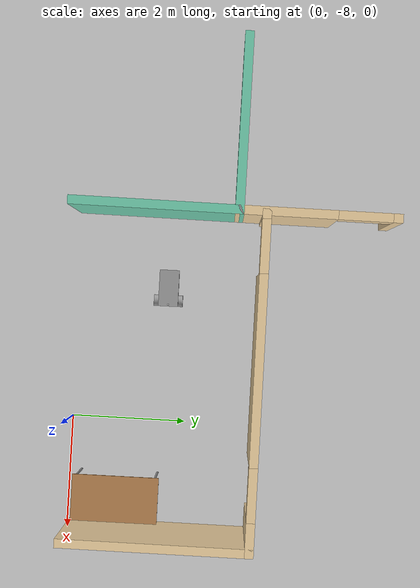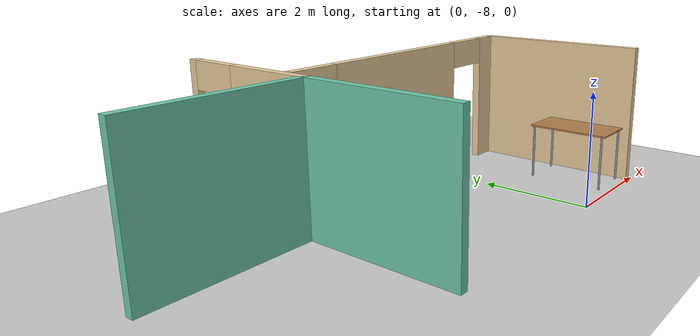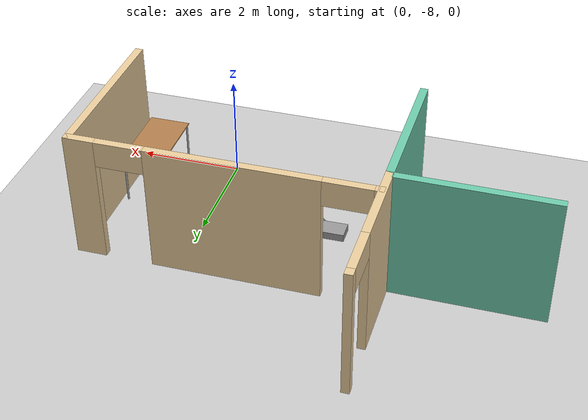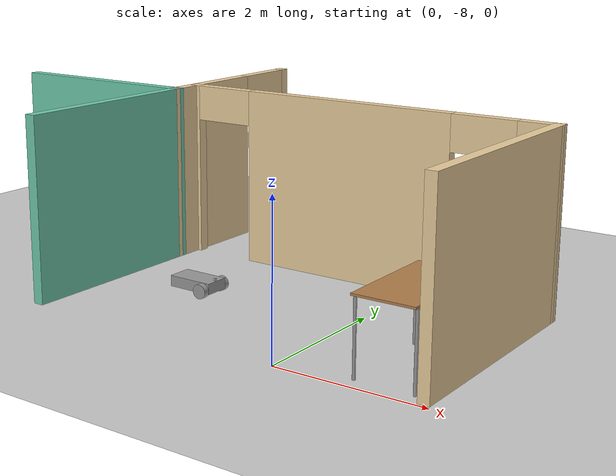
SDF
<sdf version="1.6">
 <world name="default">
  <model name="ground_plane">
   <static>1</static>
   <link name="link">
    <collision name="collision">
     <geometry><plane><normal>0 0 1</normal><size>100 100</size></plane></geometry>
     <surface><friction><ode><mu>100</mu><mu2>50</mu2></ode></friction></surface>
    </collision>
    <visual name="visual">
     <cast_shadows>0</cast_shadows>
     <geometry><plane><normal>0 0 1</normal><size>100 100</size></plane></geometry>
     <material>
      <script><uri>file://media/materials/scripts/gazebo.material</uri><name>Gazebo/Grey</name></script>
     </material>
    </visual>
   </link>
  </model>
  <model name="Building">
   <link name="Wall_269">
    <pose>-5.10842 -4.98169 0 0 -0 0</pose>
    <visual name="Wall_269_Visual">
     <pose>0 0 1.25 0 -0 0</pose>
     <geometry><box><size>0.15 0.15 2.5</size></box></geometry>
     <material>
      <script><uri>file://media/materials/scripts/gazebo.material</uri><name>Gazebo/Grey</name></script>
      <ambient>1 1 1 1</ambient>
      <shader type="pixel"/>
      <diffuse>0.7 0.7 0.7 1</diffuse>
      <specular>0.01 0.01 0.01 1</specular>
      <emissive>0 0 0 1</emissive>
     </material>
     <meta><layer>0</layer></meta>
    </visual>
    <collision name="Wall_269_Collision">
     <pose>0 0 1.25 0 -0 0</pose>
     <geometry><box><size>0.15 0.15 2.5</size></box></geometry>
     <surface>
      <friction>
       <ode><mu>1</mu><mu2>1</mu2><fdir1>0 0 0</fdir1><slip1>0</slip1><slip2>0</slip2></ode>
       <torsional>
        <coefficient>1</coefficient>
        <patch_radius>0</patch_radius>
        <surface_radius>0</surface_radius>
        <use_patch_radius>1</use_patch_radius>
        <ode><slip>0</slip></ode>
       </torsional>
      </friction>
      <bounce><restitution_coefficient>0</restitution_coefficient><threshold>1e+06</threshold></bounce>
      <contact>
       <collide_without_contact>0</collide_without_contact>
       <collide_without_contact_bitmask>1</collide_without_contact_bitmask>
       <collide_bitmask>1</collide_bitmask>
       <ode>
        <soft_cfm>0</soft_cfm>
        <soft_erp>0.2</soft_erp>
        <kp>1e+13</kp>
        <kd>1</kd>
        <max_vel>0.01</max_vel>
        <min_depth>0</min_depth>
       </ode>
       <bullet>
        <split_impulse>1</split_impulse>
        <split_impulse_penetration_threshold>-0.01</split_impulse_penetration_threshold>
        <soft_cfm>0</soft_cfm>
        <soft_erp>0.2</soft_erp>
        <kp>1e+13</kp>
        <kd>1</kd>
       </bullet>
      </contact>
     </surface>
    </collision>
   </link>
   <link name="Wall_270">
    <pose>-5.10842 -3.68169 0 0 -0 1.5708</pose>
    <visual name="Wall_270_Visual_0">
     <pose>-0.529099 0 1.25 0 -0 0</pose>
     <geometry><box><size>1.6918 0.15 2.5</size></box></geometry>
     <material>
      <script><uri>file://media/materials/scripts/gazebo.material</uri><name>Gazebo/Grey</name></script>
      <ambient>0.921569 0.807843 0.615686 1</ambient>
      <shader type="pixel"/>
      <diffuse>0.7 0.7 0.7 1</diffuse>
      <specular>0.01 0.01 0.01 1</specular>
      <emissive>0 0 0 1</emissive>
     </material>
     <meta><layer>0</layer></meta>
    </visual>
    <visual name="Wall_270_Visual_1">
     <pose>1.2959 0 1.25 0 -0 0</pose>
     <geometry><box><size>0.158198 0.15 2.5</size></box></geometry>
     <material>
      <script><uri>file://media/materials/scripts/gazebo.material</uri><name>Gazebo/Grey</name></script>
      <ambient>0.921569 0.807843 0.615686 1</ambient>
      <shader type="pixel"/>
      <diffuse>0.7 0.7 0.7 1</diffuse>
      <specular>0.01 0.01 0.01 1</specular>
      <emissive>0 0 0 1</emissive>
     </material>
     <meta><layer>0</layer></meta>
    </visual>
    <visual name="Wall_270_Visual_2">
     <pose>0.766802 0 2.25 0 -0 0</pose>
     <geometry><box><size>0.9 0.15 0.5</size></box></geometry>
     <material>
      <script><uri>file://media/materials/scripts/gazebo.material</uri><name>Gazebo/Grey</name></script>
      <ambient>0.921569 0.807843 0.615686 1</ambient>
      <shader type="pixel"/>
      <diffuse>0.7 0.7 0.7 1</diffuse>
      <specular>0.01 0.01 0.01 1</specular>
      <emissive>0 0 0 1</emissive>
     </material>
     <meta><layer>0</layer></meta>
    </visual>
    <collision name="Wall_270_Collision_0">
     <pose>-0.529099 0 1.25 0 -0 0</pose>
     <geometry><box><size>1.6918 0.15 2.5</size></box></geometry>
     <surface>
      <friction>
       <ode><mu>1</mu><mu2>1</mu2><fdir1>0 0 0</fdir1><slip1>0</slip1><slip2>0</slip2></ode>
       <torsional>
        <coefficient>1</coefficient>
        <patch_radius>0</patch_radius>
        <surface_radius>0</surface_radius>
        <use_patch_radius>1</use_patch_radius>
        <ode><slip>0</slip></ode>
       </torsional>
      </friction>
      <bounce><restitution_coefficient>0</restitution_coefficient><threshold>1e+06</threshold></bounce>
      <contact>
       <collide_without_contact>0</collide_without_contact>
       <collide_without_contact_bitmask>1</collide_without_contact_bitmask>
       <collide_bitmask>1</collide_bitmask>
       <ode>
        <soft_cfm>0</soft_cfm>
        <soft_erp>0.2</soft_erp>
        <kp>1e+13</kp>
        <kd>1</kd>
        <max_vel>0.01</max_vel>
        <min_depth>0</min_depth>
       </ode>
       <bullet>
        <split_impulse>1</split_impulse>
        <split_impulse_penetration_threshold>-0.01</split_impulse_penetration_threshold>
        <soft_cfm>0</soft_cfm>
        <soft_erp>0.2</soft_erp>
        <kp>1e+13</kp>
        <kd>1</kd>
       </bullet>
      </contact>
     </surface>
    </collision>
    <collision name="Wall_270_Collision_1">
     <pose>1.2959 0 1.25 0 -0 0</pose>
     <geometry><box><size>0.158198 0.15 2.5</size></box></geometry>
     <surface>
      <friction>
       <ode><mu>1</mu><mu2>1</mu2><fdir1>0 0 0</fdir1><slip1>0</slip1><slip2>0</slip2></ode>
       <torsional>
        <coefficient>1</coefficient>
        <patch_radius>0</patch_radius>
        <surface_radius>0</surface_radius>
        <use_patch_radius>1</use_patch_radius>
        <ode><slip>0</slip></ode>
       </torsional>
      </friction>
      <bounce><restitution_coefficient>0</restitution_coefficient><threshold>1e+06</threshold></bounce>
      <contact>
       <collide_without_contact>0</collide_without_contact>
       <collide_without_contact_bitmask>1</collide_without_contact_bitmask>
       <collide_bitmask>1</collide_bitmask>
       <ode>
        <soft_cfm>0</soft_cfm>
        <soft_erp>0.2</soft_erp>
        <kp>1e+13</kp>
        <kd>1</kd>
        <max_vel>0.01</max_vel>
        <min_depth>0</min_depth>
       </ode>
       <bullet>
        <split_impulse>1</split_impulse>
        <split_impulse_penetration_threshold>-0.01</split_impulse_penetration_threshold>
        <soft_cfm>0</soft_cfm>
        <soft_erp>0.2</soft_erp>
        <kp>1e+13</kp>
        <kd>1</kd>
       </bullet>
      </contact>
     </surface>
    </collision>
    <collision name="Wall_270_Collision_2">
     <pose>0.766802 0 2.25 0 -0 0</pose>
     <geometry><box><size>0.9 0.15 0.5</size></box></geometry>
     <surface>
      <friction>
       <ode><mu>1</mu><mu2>1</mu2><fdir1>0 0 0</fdir1><slip1>0</slip1><slip2>0</slip2></ode>
       <torsional>
        <coefficient>1</coefficient>
        <patch_radius>0</patch_radius>
        <surface_radius>0</surface_radius>
        <use_patch_radius>1</use_patch_radius>
        <ode><slip>0</slip></ode>
       </torsional>
      </friction>
      <bounce><restitution_coefficient>0</restitution_coefficient><threshold>1e+06</threshold></bounce>
      <contact>
       <collide_without_contact>0</collide_without_contact>
       <collide_without_contact_bitmask>1</collide_without_contact_bitmask>
       <collide_bitmask>1</collide_bitmask>
       <ode>
        <soft_cfm>0</soft_cfm>
        <soft_erp>0.2</soft_erp>
        <kp>1e+13</kp>
        <kd>1</kd>
        <max_vel>0.01</max_vel>
        <min_depth>0</min_depth>
       </ode>
       <bullet>
        <split_impulse>1</split_impulse>
        <split_impulse_penetration_threshold>-0.01</split_impulse_penetration_threshold>
        <soft_cfm>0</soft_cfm>
        <soft_erp>0.2</soft_erp>
        <kp>1e+13</kp>
        <kd>1</kd>
       </bullet>
      </contact>
     </surface>
    </collision>
   </link>
   <link name="Wall_273">
    <pose>-2.28397 -4.52295 0 0 -0 0.003202</pose>
    <visual name="Wall_273_Visual_0">
     <pose>-2.78056 0 1.25 0 -0 0</pose>
     <geometry><box><size>0.16425 0.15 2.5</size></box></geometry>
     <material>
      <script><uri>file://media/materials/scripts/gazebo.material</uri><name>Gazebo/Grey</name></script>
      <ambient>0.921569 0.807843 0.615686 1</ambient>
      <shader type="pixel"/>
      <diffuse>0.7 0.7 0.7 1</diffuse>
      <specular>0.01 0.01 0.01 1</specular>
      <emissive>0 0 0 1</emissive>
     </material>
     <meta><layer>0</layer></meta>
    </visual>
    <visual name="Wall_273_Visual_1">
     <pose>-0.206382 0 1.25 0 -0 0</pose>
     <geometry><box><size>3.18411 0.15 2.5</size></box></geometry>
     <material>
      <script><uri>file://media/materials/scripts/gazebo.material</uri><name>Gazebo/Grey</name></script>
      <ambient>0.921569 0.807843 0.615686 1</ambient>
      <shader type="pixel"/>
      <diffuse>0.7 0.7 0.7 1</diffuse>
      <specular>0.01 0.01 0.01 1</specular>
      <emissive>0 0 0 1</emissive>
     </material>
     <meta><layer>0</layer></meta>
    </visual>
    <visual name="Wall_273_Visual_2">
     <pose>2.57418 0 1.25 0 -0 0</pose>
     <geometry><box><size>0.577014 0.15 2.5</size></box></geometry>
     <material>
      <script><uri>file://media/materials/scripts/gazebo.material</uri><name>Gazebo/Grey</name></script>
      <ambient>0.921569 0.807843 0.615686 1</ambient>
      <shader type="pixel"/>
      <diffuse>0.7 0.7 0.7 1</diffuse>
      <specular>0.01 0.01 0.01 1</specular>
      <emissive>0 0 0 1</emissive>
     </material>
     <meta><layer>0</layer></meta>
    </visual>
    <visual name="Wall_273_Visual_3">
     <pose>-2.24844 0 2.25 0 -0 0</pose>
     <geometry><box><size>0.9 0.15 0.5</size></box></geometry>
     <material>
      <script><uri>file://media/materials/scripts/gazebo.material</uri><name>Gazebo/Grey</name></script>
      <ambient>0.921569 0.807843 0.615686 1</ambient>
      <shader type="pixel"/>
      <diffuse>0.7 0.7 0.7 1</diffuse>
      <specular>0.01 0.01 0.01 1</specular>
      <emissive>0 0 0 1</emissive>
     </material>
     <meta><layer>0</layer></meta>
    </visual>
    <visual name="Wall_273_Visual_4">
     <pose>1.83567 0 2.25 0 -0 0</pose>
     <geometry><box><size>0.9 0.15 0.5</size></box></geometry>
     <material>
      <script><uri>file://media/materials/scripts/gazebo.material</uri><name>Gazebo/Grey</name></script>
      <ambient>0.921569 0.807843 0.615686 1</ambient>
      <shader type="pixel"/>
      <diffuse>0.7 0.7 0.7 1</diffuse>
      <specular>0.01 0.01 0.01 1</specular>
      <emissive>0 0 0 1</emissive>
     </material>
     <meta><layer>0</layer></meta>
    </visual>
    <collision name="Wall_273_Collision_0">
     <pose>-2.78056 0 1.25 0 -0 0</pose>
     <geometry><box><size>0.16425 0.15 2.5</size></box></geometry>
     <surface>
      <friction>
       <ode><mu>1</mu><mu2>1</mu2><fdir1>0 0 0</fdir1><slip1>0</slip1><slip2>0</slip2></ode>
       <torsional>
        <coefficient>1</coefficient>
        <patch_radius>0</patch_radius>
        <surface_radius>0</surface_radius>
        <use_patch_radius>1</use_patch_radius>
        <ode><slip>0</slip></ode>
       </torsional>
      </friction>
      <bounce><restitution_coefficient>0</restitution_coefficient><threshold>1e+06</threshold></bounce>
      <contact>
       <collide_without_contact>0</collide_without_contact>
       <collide_without_contact_bitmask>1</collide_without_contact_bitmask>
       <collide_bitmask>1</collide_bitmask>
       <ode>
        <soft_cfm>0</soft_cfm>
        <soft_erp>0.2</soft_erp>
        <kp>1e+13</kp>
        <kd>1</kd>
        <max_vel>0.01</max_vel>
        <min_depth>0</min_depth>
       </ode>
       <bullet>
        <split_impulse>1</split_impulse>
        <split_impulse_penetration_threshold>-0.01</split_impulse_penetration_threshold>
        <soft_cfm>0</soft_cfm>
        <soft_erp>0.2</soft_erp>
        <kp>1e+13</kp>
        <kd>1</kd>
       </bullet>
      </contact>
     </surface>
    </collision>
    <collision name="Wall_273_Collision_1">
     <pose>-0.206382 0 1.25 0 -0 0</pose>
     <geometry><box><size>3.18411 0.15 2.5</size></box></geometry>
     <surface>
      <friction>
       <ode><mu>1</mu><mu2>1</mu2><fdir1>0 0 0</fdir1><slip1>0</slip1><slip2>0</slip2></ode>
       <torsional>
        <coefficient>1</coefficient>
        <patch_radius>0</patch_radius>
        <surface_radius>0</surface_radius>
        <use_patch_radius>1</use_patch_radius>
        <ode><slip>0</slip></ode>
       </torsional>
      </friction>
      <bounce><restitution_coefficient>0</restitution_coefficient><threshold>1e+06</threshold></bounce>
      <contact>
       <collide_without_contact>0</collide_without_contact>
       <collide_without_contact_bitmask>1</collide_without_contact_bitmask>
       <collide_bitmask>1</collide_bitmask>
       <ode>
        <soft_cfm>0</soft_cfm>
        <soft_erp>0.2</soft_erp>
        <kp>1e+13</kp>
        <kd>1</kd>
        <max_vel>0.01</max_vel>
        <min_depth>0</min_depth>
       </ode>
       <bullet>
        <split_impulse>1</split_impulse>
        <split_impulse_penetration_threshold>-0.01</split_impulse_penetration_threshold>
        <soft_cfm>0</soft_cfm>
        <soft_erp>0.2</soft_erp>
        <kp>1e+13</kp>
        <kd>1</kd>
       </bullet>
      </contact>
     </surface>
    </collision>
    <collision name="Wall_273_Collision_2">
     <pose>2.57418 0 1.25 0 -0 0</pose>
     <geometry><box><size>0.577014 0.15 2.5</size></box></geometry>
     <surface>
      <friction>
       <ode><mu>1</mu><mu2>1</mu2><fdir1>0 0 0</fdir1><slip1>0</slip1><slip2>0</slip2></ode>
       <torsional>
        <coefficient>1</coefficient>
        <patch_radius>0</patch_radius>
        <surface_radius>0</surface_radius>
        <use_patch_radius>1</use_patch_radius>
        <ode><slip>0</slip></ode>
       </torsional>
      </friction>
      <bounce><restitution_coefficient>0</restitution_coefficient><threshold>1e+06</threshold></bounce>
      <contact>
       <collide_without_contact>0</collide_without_contact>
       <collide_without_contact_bitmask>1</collide_without_contact_bitmask>
       <collide_bitmask>1</collide_bitmask>
       <ode>
        <soft_cfm>0</soft_cfm>
        <soft_erp>0.2</soft_erp>
        <kp>1e+13</kp>
        <kd>1</kd>
        <max_vel>0.01</max_vel>
        <min_depth>0</min_depth>
       </ode>
       <bullet>
        <split_impulse>1</split_impulse>
        <split_impulse_penetration_threshold>-0.01</split_impulse_penetration_threshold>
        <soft_cfm>0</soft_cfm>
        <soft_erp>0.2</soft_erp>
        <kp>1e+13</kp>
        <kd>1</kd>
       </bullet>
      </contact>
     </surface>
    </collision>
    <collision name="Wall_273_Collision_3">
     <pose>-2.24844 0 2.25 0 -0 0</pose>
     <geometry><box><size>0.9 0.15 0.5</size></box></geometry>
     <surface>
      <friction>
       <ode><mu>1</mu><mu2>1</mu2><fdir1>0 0 0</fdir1><slip1>0</slip1><slip2>0</slip2></ode>
       <torsional>
        <coefficient>1</coefficient>
        <patch_radius>0</patch_radius>
        <surface_radius>0</surface_radius>
        <use_patch_radius>1</use_patch_radius>
        <ode><slip>0</slip></ode>
       </torsional>
      </friction>
      <bounce><restitution_coefficient>0</restitution_coefficient><threshold>1e+06</threshold></bounce>
      <contact>
       <collide_without_contact>0</collide_without_contact>
       <collide_without_contact_bitmask>1</collide_without_contact_bitmask>
       <collide_bitmask>1</collide_bitmask>
       <ode>
        <soft_cfm>0</soft_cfm>
        <soft_erp>0.2</soft_erp>
        <kp>1e+13</kp>
        <kd>1</kd>
        <max_vel>0.01</max_vel>
        <min_depth>0</min_depth>
       </ode>
       <bullet>
        <split_impulse>1</split_impulse>
        <split_impulse_penetration_threshold>-0.01</split_impulse_penetration_threshold>
        <soft_cfm>0</soft_cfm>
        <soft_erp>0.2</soft_erp>
        <kp>1e+13</kp>
        <kd>1</kd>
       </bullet>
      </contact>
     </surface>
    </collision>
    <collision name="Wall_273_Collision_4">
     <pose>1.83567 0 2.25 0 -0 0</pose>
     <geometry><box><size>0.9 0.15 0.5</size></box></geometry>
     <surface>
      <friction>
       <ode><mu>1</mu><mu2>1</mu2><fdir1>0 0 0</fdir1><slip1>0</slip1><slip2>0</slip2></ode>
       <torsional>
        <coefficient>1</coefficient>
        <patch_radius>0</patch_radius>
        <surface_radius>0</surface_radius>
        <use_patch_radius>1</use_patch_radius>
        <ode><slip>0</slip></ode>
       </torsional>
      </friction>
      <bounce><restitution_coefficient>0</restitution_coefficient><threshold>1e+06</threshold></bounce>
      <contact>
       <collide_without_contact>0</collide_without_contact>
       <collide_without_contact_bitmask>1</collide_without_contact_bitmask>
       <collide_bitmask>1</collide_bitmask>
       <ode>
        <soft_cfm>0</soft_cfm>
        <soft_erp>0.2</soft_erp>
        <kp>1e+13</kp>
        <kd>1</kd>
        <max_vel>0.01</max_vel>
        <min_depth>0</min_depth>
       </ode>
       <bullet>
        <split_impulse>1</split_impulse>
        <split_impulse_penetration_threshold>-0.01</split_impulse_penetration_threshold>
        <soft_cfm>0</soft_cfm>
        <soft_erp>0.2</soft_erp>
        <kp>1e+13</kp>
        <kd>1</kd>
       </bullet>
      </contact>
     </surface>
    </collision>
   </link>
   <link name="Wall_274">
    <pose>0.503703 -6.07807 0 0 0 -1.5708</pose>
    <visual name="Wall_274_Visual">
     <pose>0 0 1.25 0 -0 0</pose>
     <geometry><box><size>3.25 0.15 2.5</size></box></geometry>
     <material>
      <script><uri>file://media/materials/scripts/gazebo.material</uri><name>Gazebo/Grey</name></script>
      <ambient>0.921569 0.807843 0.615686 1</ambient>
      <shader type="pixel"/>
      <diffuse>0.7 0.7 0.7 1</diffuse>
      <specular>0.01 0.01 0.01 1</specular>
      <emissive>0 0 0 1</emissive>
     </material>
     <meta><layer>0</layer></meta>
    </visual>
    <collision name="Wall_274_Collision">
     <pose>0 0 1.25 0 -0 0</pose>
     <geometry><box><size>3.25 0.15 2.5</size></box></geometry>
     <surface>
      <friction>
       <ode><mu>1</mu><mu2>1</mu2><fdir1>0 0 0</fdir1><slip1>0</slip1><slip2>0</slip2></ode>
       <torsional>
        <coefficient>1</coefficient>
        <patch_radius>0</patch_radius>
        <surface_radius>0</surface_radius>
        <use_patch_radius>1</use_patch_radius>
        <ode><slip>0</slip></ode>
       </torsional>
      </friction>
      <bounce><restitution_coefficient>0</restitution_coefficient><threshold>1e+06</threshold></bounce>
      <contact>
       <collide_without_contact>0</collide_without_contact>
       <collide_without_contact_bitmask>1</collide_without_contact_bitmask>
       <collide_bitmask>1</collide_bitmask>
       <ode>
        <soft_cfm>0</soft_cfm>
        <soft_erp>0.2</soft_erp>
        <kp>1e+13</kp>
        <kd>1</kd>
        <max_vel>0.01</max_vel>
        <min_depth>0</min_depth>
       </ode>
       <bullet>
        <split_impulse>1</split_impulse>
        <split_impulse_penetration_threshold>-0.01</split_impulse_penetration_threshold>
        <soft_cfm>0</soft_cfm>
        <soft_erp>0.2</soft_erp>
        <kp>1e+13</kp>
        <kd>1</kd>
       </bullet>
      </contact>
     </surface>
    </collision>
   </link>
   <link name="Wall_6">
    <pose>-6.53342 -4.98169 0 0 -0 0</pose>
    <visual name="Wall_6_Visual">
     <pose>0 0 1.25 0 -0 0</pose>
     <geometry><box><size>3 0.15 2.5</size></box></geometry>
     <material>
      <script><uri>file://media/materials/scripts/gazebo.material</uri><name>Gazebo/Grey</name></script>
      <ambient>0.435294 0.796078 0.67451 1</ambient>
      <shader type="pixel"/>
      <diffuse>0.7 0.7 0.7 1</diffuse>
      <specular>0.01 0.01 0.01 1</specular>
      <emissive>0 0 0 1</emissive>
     </material>
     <meta><layer>0</layer></meta>
    </visual>
    <collision name="Wall_6_Collision">
     <pose>0 0 1.25 0 -0 0</pose>
     <geometry><box><size>3 0.15 2.5</size></box></geometry>
     <surface>
      <friction>
       <ode><mu>1</mu><mu2>1</mu2><fdir1>0 0 0</fdir1><slip1>0</slip1><slip2>0</slip2></ode>
       <torsional>
        <coefficient>1</coefficient>
        <patch_radius>0</patch_radius>
        <surface_radius>0</surface_radius>
        <use_patch_radius>1</use_patch_radius>
        <ode><slip>0</slip></ode>
       </torsional>
      </friction>
      <bounce><restitution_coefficient>0</restitution_coefficient><threshold>1e+06</threshold></bounce>
      <contact>
       <collide_without_contact>0</collide_without_contact>
       <collide_without_contact_bitmask>1</collide_without_contact_bitmask>
       <collide_bitmask>1</collide_bitmask>
       <ode>
        <soft_cfm>0</soft_cfm>
        <soft_erp>0.2</soft_erp>
        <kp>1e+13</kp>
        <kd>1</kd>
        <max_vel>0.01</max_vel>
        <min_depth>0</min_depth>
       </ode>
       <bullet>
        <split_impulse>1</split_impulse>
        <split_impulse_penetration_threshold>-0.01</split_impulse_penetration_threshold>
        <soft_cfm>0</soft_cfm>
        <soft_erp>0.2</soft_erp>
        <kp>1e+13</kp>
        <kd>1</kd>
       </bullet>
      </contact>
     </surface>
    </collision>
   </link>
   <link name="Wall_7">
    <pose>-5.11207 -6.35588 0 0 0 -1.57345</pose>
    <visual name="Wall_7_Visual">
     <pose>0 0 1.25 0 -0 0</pose>
     <geometry><box><size>2.89844 0.15 2.5</size></box></geometry>
     <material>
      <script><uri>file://media/materials/scripts/gazebo.material</uri><name>Gazebo/Grey</name></script>
      <ambient>0.435294 0.796078 0.67451 1</ambient>
      <shader type="pixel"/>
      <diffuse>0.7 0.7 0.7 1</diffuse>
      <specular>0.01 0.01 0.01 1</specular>
      <emissive>0 0 0 1</emissive>
     </material>
     <meta><layer>0</layer></meta>
    </visual>
    <collision name="Wall_7_Collision">
     <pose>0 0 1.25 0 -0 0</pose>
     <geometry><box><size>2.89844 0.15 2.5</size></box></geometry>
     <surface>
      <friction>
       <ode><mu>1</mu><mu2>1</mu2><fdir1>0 0 0</fdir1><slip1>0</slip1><slip2>0</slip2></ode>
       <torsional>
        <coefficient>1</coefficient>
        <patch_radius>0</patch_radius>
        <surface_radius>0</surface_radius>
        <use_patch_radius>1</use_patch_radius>
        <ode><slip>0</slip></ode>
       </torsional>
      </friction>
      <bounce><restitution_coefficient>0</restitution_coefficient><threshold>1e+06</threshold></bounce>
      <contact>
       <collide_without_contact>0</collide_without_contact>
       <collide_without_contact_bitmask>1</collide_without_contact_bitmask>
       <collide_bitmask>1</collide_bitmask>
       <ode>
        <soft_cfm>0</soft_cfm>
        <soft_erp>0.2</soft_erp>
        <kp>1e+13</kp>
        <kd>1</kd>
        <max_vel>0.01</max_vel>
        <min_depth>0</min_depth>
       </ode>
       <bullet>
        <split_impulse>1</split_impulse>
        <split_impulse_penetration_threshold>-0.01</split_impulse_penetration_threshold>
        <soft_cfm>0</soft_cfm>
        <soft_erp>0.2</soft_erp>
        <kp>1e+13</kp>
        <kd>1</kd>
       </bullet>
      </contact>
     </surface>
    </collision>
   </link>
   <static>1</static>
   <pose>1.39929 -0.252215 0 0 -0 0</pose>
  </model>
  <model name="table">
   <static>1</static>
   <link name="link">
    <collision name="surface">
     <pose>0 0 1 0 -0 0</pose>
     <geometry><box><size>1.5 0.8 0.03</size></box></geometry>
     <surface><friction><ode><mu>0.6</mu><mu2>0.6</mu2></ode></friction></surface>
    </collision>
    <visual name="visual1">
     <pose>0 0 1 0 -0 0</pose>
     <geometry><box><size>1.5 0.8 0.03</size></box></geometry>
     <material>
      <script><uri>file://media/materials/scripts/gazebo.material</uri><name>Gazebo/Wood</name></script>
     </material>
    </visual>
    <collision name="front_left_leg">
     <pose>0.68 0.38 0.5 0 -0 0</pose>
     <geometry><cylinder><radius>0.02</radius><length>1</length></cylinder></geometry>
    </collision>
    <visual name="front_left_leg">
     <pose>0.68 0.38 0.5 0 -0 0</pose>
     <geometry><cylinder><radius>0.02</radius><length>1</length></cylinder></geometry>
     <material>
      <script><uri>file://media/materials/scripts/gazebo.material</uri><name>Gazebo/Grey</name></script>
     </material>
    </visual>
    <collision name="front_right_leg">
     <pose>0.68 -0.38 0.5 0 -0 0</pose>
     <geometry><cylinder><radius>0.02</radius><length>1</length></cylinder></geometry>
    </collision>
    <visual name="front_right_leg">
     <pose>0.68 -0.38 0.5 0 -0 0</pose>
     <geometry><cylinder><radius>0.02</radius><length>1</length></cylinder></geometry>
     <material>
      <script><uri>file://media/materials/scripts/gazebo.material</uri><name>Gazebo/Grey</name></script>
     </material>
    </visual>
    <collision name="back_right_leg">
     <pose>-0.68 -0.38 0.5 0 -0 0</pose>
     <geometry><cylinder><radius>0.02</radius><length>1</length></cylinder></geometry>
    </collision>
    <visual name="back_right_leg">
     <pose>-0.68 -0.38 0.5 0 -0 0</pose>
     <geometry><cylinder><radius>0.02</radius><length>1</length></cylinder></geometry>
     <material>
      <script><uri>file://media/materials/scripts/gazebo.material</uri><name>Gazebo/Grey</name></script>
     </material>
    </visual>
    <collision name="back_left_leg">
     <pose>-0.68 0.38 0.5 0 -0 0</pose>
     <geometry><cylinder><radius>0.02</radius><length>1</length></cylinder></geometry>
    </collision>
    <visual name="back_left_leg">
     <pose>-0.68 0.38 0.5 0 -0 0</pose>
     <geometry><cylinder><radius>0.02</radius><length>1</length></cylinder></geometry>
     <material>
      <script><uri>file://media/materials/scripts/gazebo.material</uri><name>Gazebo/Grey</name></script>
     </material>
    </visual>
   </link>
   <pose>1.33201 -7.11271 0 0 0 -1.56708</pose>
  </model>
  <model name="VehicleRobot_0">
   <link name="link_10_clone">
    <pose>0.278989 0.302807 0.099972 1.5707 -0 0</pose>
    <inertial>
     <mass>0.5</mass>
     <inertia><ixx>0.145833</ixx><ixy>0</ixy><ixz>0</ixz><iyy>0.145833</iyy><iyz>0</iyz><izz>0.125</izz></inertia>
    </inertial>
    <visual name="visual">
     <geometry><cylinder><radius>0.1</radius><length>0.08</length></cylinder></geometry>
     <material>
      <lighting>1</lighting>
      <script><uri>file://media/materials/scripts/gazebo.material</uri><name>Gazebo/Grey</name></script>
      <shader type="pixel"><normal_map>__default__</normal_map></shader>
      <ambient>0.3 0.3 0.3 1</ambient>
      <diffuse>0.7 0.7 0.7 1</diffuse>
      <specular>0.01 0.01 0.01 1</specular>
      <emissive>0 0 0 1</emissive>
     </material>
    </visual>
    <collision name="collision">
     <geometry><cylinder><radius>0.1</radius><length>0.08</length></cylinder></geometry>
     <surface>
      <friction>
       <ode><mu>1</mu><mu2>1</mu2><fdir1>0 0 0</fdir1><slip1>0</slip1><slip2>0</slip2></ode>
       <torsional>
        <coefficient>1</coefficient>
        <patch_radius>0</patch_radius>
        <surface_radius>0</surface_radius>
        <use_patch_radius>1</use_patch_radius>
        <ode><slip>0</slip></ode>
       </torsional>
      </friction>
      <bounce><restitution_coefficient>0</restitution_coefficient><threshold>1e+06</threshold></bounce>
      <contact>
       <collide_without_contact>0</collide_without_contact>
       <collide_without_contact_bitmask>1</collide_without_contact_bitmask>
       <collide_bitmask>1</collide_bitmask>
       <ode>
        <soft_cfm>0</soft_cfm>
        <soft_erp>0.2</soft_erp>
        <kp>1e+13</kp>
        <kd>1</kd>
        <max_vel>0.01</max_vel>
        <min_depth>0</min_depth>
       </ode>
       <bullet>
        <split_impulse>1</split_impulse>
        <split_impulse_penetration_threshold>-0.01</split_impulse_penetration_threshold>
        <soft_cfm>0</soft_cfm>
        <soft_erp>0.2</soft_erp>
        <kp>1e+13</kp>
        <kd>1</kd>
       </bullet>
      </contact>
     </surface>
    </collision>
   </link>
   <link name="link_10_clone_clone">
    <pose>0.278989 -0.128364 0.100018 1.5707 -0 0</pose>
    <inertial>
     <mass>0.5</mass>
     <inertia><ixx>0.145833</ixx><ixy>0</ixy><ixz>0</ixz><iyy>0.145833</iyy><iyz>0</iyz><izz>0.125</izz></inertia>
    </inertial>
    <visual name="visual">
     <geometry><cylinder><radius>0.1</radius><length>0.08</length></cylinder></geometry>
     <material>
      <lighting>1</lighting>
      <script><uri>file://media/materials/scripts/gazebo.material</uri><name>Gazebo/Grey</name></script>
      <shader type="pixel"><normal_map>__default__</normal_map></shader>
      <ambient>0.3 0.3 0.3 1</ambient>
      <diffuse>0.7 0.7 0.7 1</diffuse>
      <specular>0.01 0.01 0.01 1</specular>
      <emissive>0 0 0 1</emissive>
     </material>
    </visual>
    <collision name="collision">
     <geometry><cylinder><radius>0.1</radius><length>0.08</length></cylinder></geometry>
     <surface>
      <friction>
       <ode><mu>1</mu><mu2>1</mu2><fdir1>0 0 0</fdir1><slip1>0</slip1><slip2>0</slip2></ode>
       <torsional>
        <coefficient>1</coefficient>
        <patch_radius>0</patch_radius>
        <surface_radius>0</surface_radius>
        <use_patch_radius>1</use_patch_radius>
        <ode><slip>0</slip></ode>
       </torsional>
      </friction>
      <bounce><restitution_coefficient>0</restitution_coefficient><threshold>1e+06</threshold></bounce>
      <contact>
       <collide_without_contact>0</collide_without_contact>
       <collide_without_contact_bitmask>1</collide_without_contact_bitmask>
       <collide_bitmask>1</collide_bitmask>
       <ode>
        <soft_cfm>0</soft_cfm>
        <soft_erp>0.2</soft_erp>
        <kp>1e+13</kp>
        <kd>1</kd>
        <max_vel>0.01</max_vel>
        <min_depth>0</min_depth>
       </ode>
       <bullet>
        <split_impulse>1</split_impulse>
        <split_impulse_penetration_threshold>-0.01</split_impulse_penetration_threshold>
        <soft_cfm>0</soft_cfm>
        <soft_erp>0.2</soft_erp>
        <kp>1e+13</kp>
        <kd>1</kd>
       </bullet>
      </contact>
     </surface>
    </collision>
   </link>
   <link name="link_11">
    <pose>-0.191011 0.086646 0.08 0 -0 0</pose>
    <inertial>
     <mass>0.5</mass>
     <inertia><ixx>0.1</ixx><ixy>0</ixy><ixz>0</ixz><iyy>0.1</iyy><iyz>0</iyz><izz>0.1</izz></inertia>
    </inertial>
    <visual name="visual">
     <geometry><sphere><radius>0.08</radius></sphere></geometry>
     <material>
      <lighting>1</lighting>
      <script><uri>file://media/materials/scripts/gazebo.material</uri><name>Gazebo/Grey</name></script>
      <shader type="pixel"><normal_map>__default__</normal_map></shader>
      <ambient>0.3 0.3 0.3 1</ambient>
      <diffuse>0.7 0.7 0.7 1</diffuse>
      <specular>0.01 0.01 0.01 1</specular>
      <emissive>0 0 0 1</emissive>
     </material>
    </visual>
    <collision name="collision">
     <geometry><sphere><radius>0.08</radius></sphere></geometry>
     <surface>
      <friction>
       <ode><mu>1</mu><mu2>1</mu2><fdir1>0 0 0</fdir1><slip1>0</slip1><slip2>0</slip2></ode>
       <torsional>
        <coefficient>1</coefficient>
        <patch_radius>0</patch_radius>
        <surface_radius>0</surface_radius>
        <use_patch_radius>1</use_patch_radius>
        <ode><slip>0</slip></ode>
       </torsional>
      </friction>
      <bounce><restitution_coefficient>0</restitution_coefficient><threshold>1e+06</threshold></bounce>
      <contact>
       <collide_without_contact>0</collide_without_contact>
       <collide_without_contact_bitmask>1</collide_without_contact_bitmask>
       <collide_bitmask>1</collide_bitmask>
       <ode>
        <soft_cfm>0</soft_cfm>
        <soft_erp>0.2</soft_erp>
        <kp>1e+13</kp>
        <kd>1</kd>
        <max_vel>0.01</max_vel>
        <min_depth>0</min_depth>
       </ode>
       <bullet>
        <split_impulse>1</split_impulse>
        <split_impulse_penetration_threshold>-0.01</split_impulse_penetration_threshold>
        <soft_cfm>0</soft_cfm>
        <soft_erp>0.2</soft_erp>
        <kp>1e+13</kp>
        <kd>1</kd>
       </bullet>
      </contact>
     </surface>
    </collision>
   </link>
   <link name="link_9">
    <pose>0.053989 0.086646 0.13 0 -0 0</pose>
    <inertial>
     <mass>0.5</mass>
     <inertia>
      <ixx>0.166667</ixx>
      <ixy>0</ixy>
      <ixz>0</ixz>
      <iyy>0.166667</iyy>
      <iyz>0</iyz>
      <izz>0.166667</izz>
     </inertia>
    </inertial>
    <visual name="visual">
     <geometry><box><size>0.65 0.35 0.15</size></box></geometry>
     <material>
      <lighting>1</lighting>
      <script><uri>file://media/materials/scripts/gazebo.material</uri><name>Gazebo/Grey</name></script>
      <shader type="pixel"><normal_map>__default__</normal_map></shader>
      <ambient>0.3 0.3 0.3 1</ambient>
      <diffuse>0.7 0.7 0.7 1</diffuse>
      <specular>0.01 0.01 0.01 1</specular>
      <emissive>0 0 0 1</emissive>
     </material>
    </visual>
    <collision name="collision">
     <geometry><box><size>0.65 0.35 0.15</size></box></geometry>
     <surface>
      <friction>
       <ode><mu>1</mu><mu2>1</mu2><fdir1>0 0 0</fdir1><slip1>0</slip1><slip2>0</slip2></ode>
       <torsional>
        <coefficient>1</coefficient>
        <patch_radius>0</patch_radius>
        <surface_radius>0</surface_radius>
        <use_patch_radius>1</use_patch_radius>
        <ode><slip>0</slip></ode>
       </torsional>
      </friction>
      <bounce><restitution_coefficient>0</restitution_coefficient><threshold>1e+06</threshold></bounce>
      <contact>
       <collide_without_contact>0</collide_without_contact>
       <collide_without_contact_bitmask>1</collide_without_contact_bitmask>
       <collide_bitmask>1</collide_bitmask>
       <ode>
        <soft_cfm>0</soft_cfm>
        <soft_erp>0.2</soft_erp>
        <kp>1e+13</kp>
        <kd>1</kd>
        <max_vel>0.01</max_vel>
        <min_depth>0</min_depth>
       </ode>
       <bullet>
        <split_impulse>1</split_impulse>
        <split_impulse_penetration_threshold>-0.01</split_impulse_penetration_threshold>
        <soft_cfm>0</soft_cfm>
        <soft_erp>0.2</soft_erp>
        <kp>1e+13</kp>
        <kd>1</kd>
       </bullet>
      </contact>
     </surface>
    </collision>
   </link>
   <model name="camera">
    <link name="link">
     <inertial>
      <mass>0.04</mass>
      <inertia>
       <ixx>0.00016667</ixx>
       <iyy>0.00016667</iyy>
       <izz>0.00016667</izz>
       <ixy>0</ixy>
       <ixz>0</ixz>
       <iyz>0</iyz>
      </inertia>
     </inertial>
     <sensor name="camera" type="camera">
      <camera name="__default__">
       <horizontal_fov>1.047</horizontal_fov>
       <image><width>320</width><height>240</height></image>
       <clip><near>0.1</near><far>100</far></clip>
      </camera>
      <always_on>1</always_on>
      <update_rate>30</update_rate>
      <visualize>1</visualize>
     </sensor>
     <visual name="visual">
      <geometry><box><size>0.03 0.03 0.03</size></box></geometry>
      <material><shader type="pixel"><normal_map>__default__</normal_map></shader></material>
     </visual>
     <collision name="collision">
      <geometry><box><size>0.03 0.03 0.03</size></box></geometry>
      <surface>
       <friction>
        <ode><mu>1</mu><mu2>1</mu2><fdir1>0 0 0</fdir1><slip1>0</slip1><slip2>0</slip2></ode>
        <torsional>
         <coefficient>1</coefficient>
         <patch_radius>0</patch_radius>
         <surface_radius>0</surface_radius>
         <use_patch_radius>1</use_patch_radius>
         <ode><slip>0</slip></ode>
        </torsional>
       </friction>
       <bounce><restitution_coefficient>0</restitution_coefficient><threshold>1e+06</threshold></bounce>
       <contact>
        <collide_without_contact>0</collide_without_contact>
        <collide_without_contact_bitmask>1</collide_without_contact_bitmask>
        <collide_bitmask>1</collide_bitmask>
        <ode>
         <soft_cfm>0</soft_cfm>
         <soft_erp>0.2</soft_erp>
         <kp>1e+13</kp>
         <kd>1</kd>
         <max_vel>0.01</max_vel>
         <min_depth>0</min_depth>
        </ode>
        <bullet>
         <split_impulse>1</split_impulse>
         <split_impulse_penetration_threshold>-0.01</split_impulse_penetration_threshold>
         <soft_cfm>0</soft_cfm>
         <soft_erp>0.2</soft_erp>
         <kp>1e+13</kp>
         <kd>1</kd>
        </bullet>
       </contact>
      </surface>
     </collision>
    </link>
    <static>0</static>
    <pose>0.346819 0.087578 0.221125 0 -0 0</pose>
   </model>
   <joint name="link_9_JOINT_1" type="revolute">
    <parent>link_9</parent>
    <child>link_10_clone_clone</child>
    <axis>
     <xyz>0 0 1</xyz>
     <use_parent_model_frame>0</use_parent_model_frame>
     <limit>
      <lower>-1.79769e+308</lower>
      <upper>1.79769e+308</upper>
      <effort>-1</effort>
      <velocity>-1</velocity>
     </limit>
     <dynamics>
      <spring_reference>0</spring_reference>
      <spring_stiffness>0</spring_stiffness>
      <damping>0</damping>
      <friction>0</friction>
     </dynamics>
    </axis>
    <physics>
     <ode><limit><cfm>0</cfm><erp>0.2</erp></limit><suspension><cfm>0</cfm><erp>0.2</erp></suspension></ode>
    </physics>
   </joint>
   <joint name="link_9_JOINT_2" type="revolute">
    <parent>link_9</parent>
    <child>link_10_clone</child>
    <axis>
     <xyz>0 0 1</xyz>
     <use_parent_model_frame>0</use_parent_model_frame>
     <limit>
      <lower>-1.79769e+308</lower>
      <upper>1.79769e+308</upper>
      <effort>-1</effort>
      <velocity>-1</velocity>
     </limit>
     <dynamics>
      <spring_reference>0</spring_reference>
      <spring_stiffness>0</spring_stiffness>
      <damping>0</damping>
      <friction>0</friction>
     </dynamics>
    </axis>
    <physics>
     <ode><limit><cfm>0</cfm><erp>0.2</erp></limit><suspension><cfm>0</cfm><erp>0.2</erp></suspension></ode>
    </physics>
   </joint>
   <joint name="link_9_JOINT_3" type="ball">
    <parent>link_9</parent>
    <child>link_11</child>
    <physics>
     <ode><limit><cfm>0</cfm><erp>0.2</erp></limit><suspension><cfm>0</cfm><erp>0.2</erp></suspension></ode>
    </physics>
   </joint>
   <joint name="link_9_JOINT_5" type="fixed">
    <parent>link_9</parent>
    <child>camera::link</child>
    <physics>
     <ode><limit><cfm>0</cfm><erp>0.2</erp></limit><suspension><cfm>0</cfm><erp>0.2</erp></suspension></ode>
    </physics>
   </joint>
   <static>0</static>
   <pose>-2.43408 -6.49729 0.002367 0.000103 0.008488 0.003891</pose>
  </model>
 </world>
</sdf>
